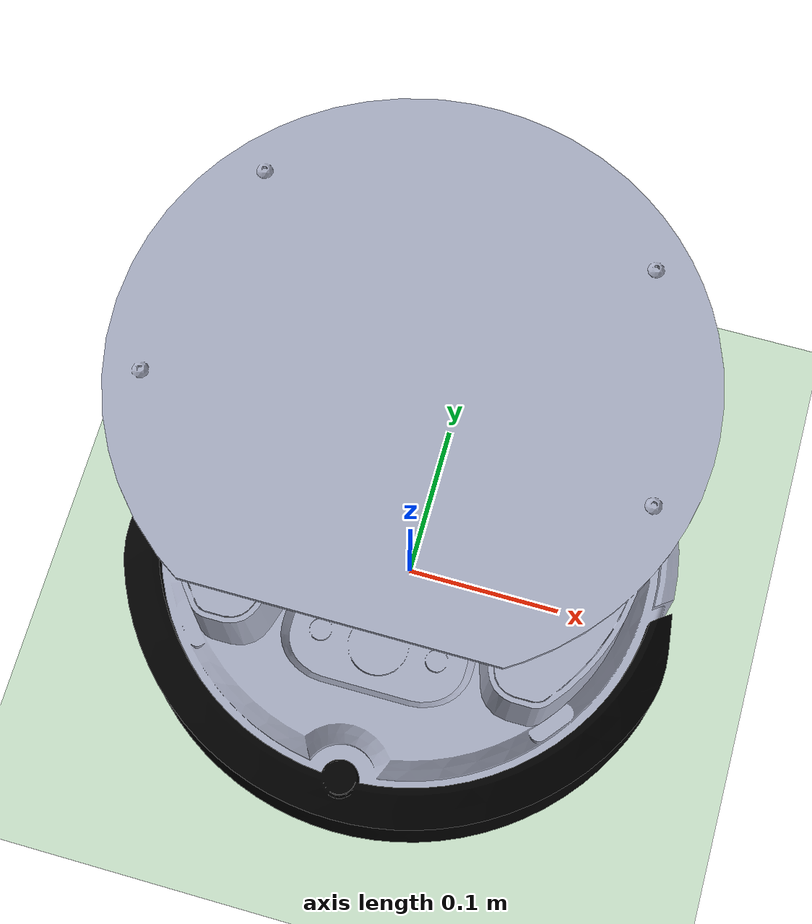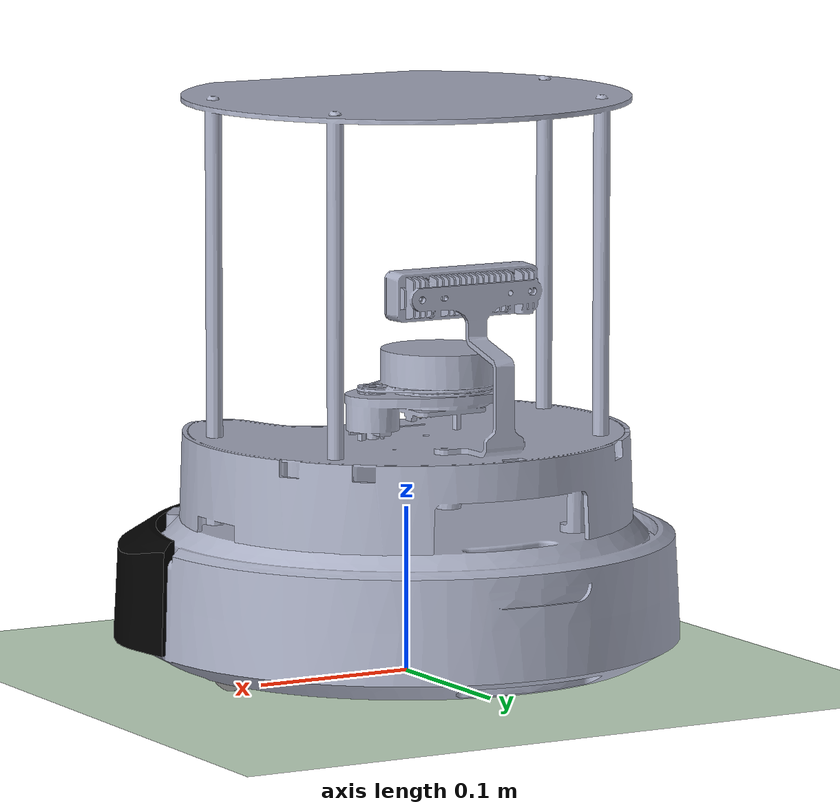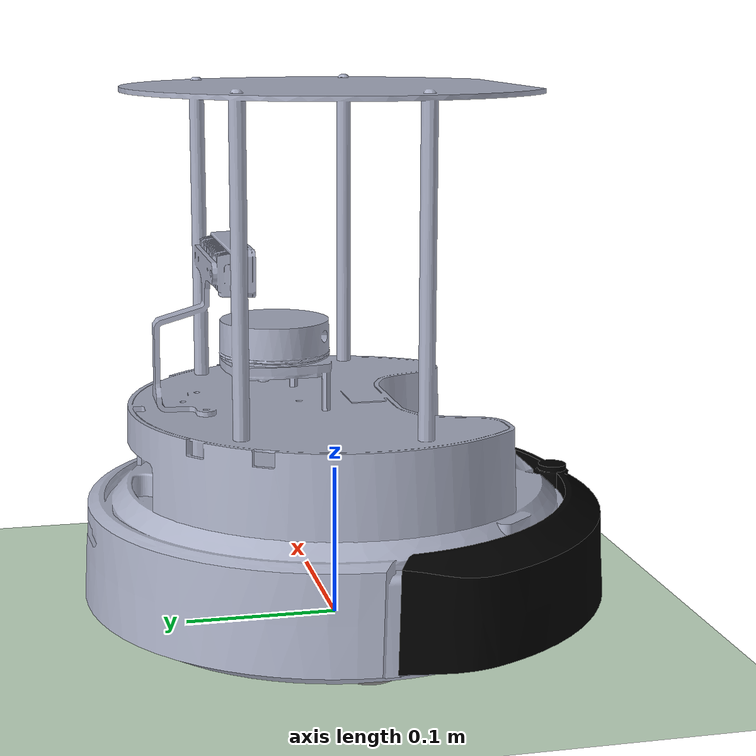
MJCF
<mujoco model="tb4">
    <compiler angle="radian" coordinate="local" meshdir="meshes" autolimits="true"/>

    <size nstack="300000" nuser_geom="1"/>
    <option gravity="0 0 -9.81" timestep="0.01"/>

    <asset>
        <material name="metal" rgba=".9 .95 .95 1"/>
        <material name="black" rgba="0 0 0 1"/>
        <material name="white" rgba="1 1 1 1"/>
        <material name="gray" rgba="0.671705 0.692426 0.774270 1"/>
        <mesh file="body_visual_processed.stl" scale="0.1 0.1 0.1"/>
        <mesh file="bumper_visual.obj" scale="0.001 0.001 0.001"/>
        <mesh file="top_reduced.stl" scale="0.001 0.001 0.001"/>
        <mesh file="weight_block.stl" scale="0.001 0.001 0.001"/>
        <mesh file="wheel.stl" scale="0.001 0.001 0.001"/>
        <texture builtin="checker" height="100" name="texplane" rgb1="0 0 0" rgb2="0.8 0.8 0.8" type="2d" width="100"/>
        <material name="MatPlane" reflectance="0.5" shininess="1" specular="1" texrepeat="60 60" texture="texplane"/>
    </asset>

  <worldbody>
    <light cutoff="100" diffuse="1 1 1" dir="-0 0 -1.3" directional="true" exponent="1" pos="0 0 1.3" specular=".1 .1 .1"/>
    <geom conaffinity="1" condim="3" material="MatPlane" name="floor" pos="0 0 0" rgba="0.8 0.9 0.8 1" size="40 40 40" type="plane"/>
    <body name="base" pos="0 0 0.0392">
        <freejoint name="floating_base_joint"/>
        <geom type="mesh" mesh="body_visual_processed" material="gray" mass="0.269"/>
        <site name="imu" pos="0.051 -0.035 0.0293"/>
        <body name="top" pos="-0.128 0.138 0.055" axisangle="0 0 1 4.71239">
            <geom type="mesh" mesh="top_reduced" material="gray" mass="0.0"/>
        </body>
        <body name="bumper" pos="0 0 0" axisangle="0 0 1 4.71239">
            <geom type="mesh" mesh="bumper_visual" material="black" mass="0.1"/>
        </body>
        <!-- WEIGHT BLOCKS -->
        <body name="front_left_bottom_weight_block" pos="0.0876 -0.06 0.0587">
            <geom type="mesh" mesh="weight_block" material="black" mass="0.061"/>
        </body>
        <body name="front_left_top_weight_block" pos="0.0876 -0.06 0.0677">
            <geom type="mesh" mesh="weight_block" material="black" mass="0.061"/>
        </body>
        <body name="front_right_bottom_weight_block" pos="-0.0876 -0.06 0.0587">
            <geom type="mesh" mesh="weight_block" material="black" mass="0.061"/>
        </body>
        <body name="front_right_top_weight_block" pos="-0.0876 -0.06 0.0677">
            <geom type="mesh" mesh="weight_block" material="black" mass="0.061"/>
        </body>
        <!-- WHEELS -->
        <body name="wheel_l" pos="0.11755 0.002 -0.0032">
            <geom type="mesh" mesh="wheel"/>
            <joint name="left" damping=".03" actuatorfrcrange="-.1 .1" pos="0 0 0" axis="1 0 0"/>
        </body>
        <body name="wheel_r" pos="-0.117 0.002 -0.0032">
            <geom type="mesh" mesh="wheel"/>
            <joint name="right" damping=".03" actuatorfrcrange="-.1 .1" pos="0 0 0" axis="1 0 0"/>
        </body>
        <body name="wheel_f" pos="0 -0.125 -0.026">
            <geom type="sphere" size="0.013 0.013"/>
            <joint type="ball"/>
        </body>
    </body>
  </worldbody>

  <tendon>
    <fixed name="forward">
      <joint joint="left" coef=".1"/>
      <joint joint="right" coef=".1"/>
    </fixed>
    <fixed name="turn">
      <joint joint="left" coef="-.1"/>
      <joint joint="right" coef=".1"/>
    </fixed>
  </tendon>

  <actuator>
    <motor name="forward" tendon="forward" ctrlrange="-1 1"/>
    <motor name="turn" tendon="turn" ctrlrange="-1 1"/>
  </actuator>

  <sensor>
    <framequat name="imu_quat" objtype="site" objname="imu"/>
    <gyro name="imu_ang" site="imu"/>
    <accelerometer name="imu_acc" site="imu"/>
  </sensor>
</mujoco>
